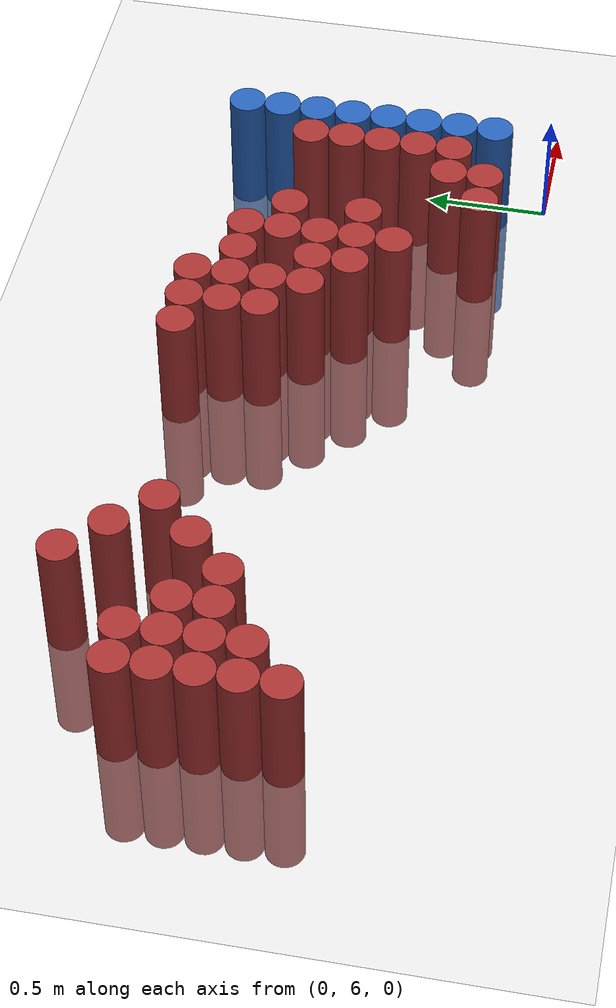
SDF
<sdf version="1.6">
 <world name="default">
  <model name="ground_plane">
   <static>1</static>
   <link name="link">
    <collision name="collision">
     <geometry><plane><normal>0 0 1</normal><size>100 100</size></plane></geometry>
     <surface><friction><ode><mu>100</mu><mu2>50</mu2></ode></friction></surface>
    </collision>
    <visual name="visual">
     <cast_shadows>0</cast_shadows>
     <geometry><plane><normal>0 0 1</normal><size>100 100</size></plane></geometry>
     <material>
      <script><uri>file://media/materials/scripts/gazebo.material</uri><name>Gazebo/Grey</name></script>
     </material>
    </visual>
   </link>
  </model>
  <model name="unit_cylinder_179">
   <static>1</static>
   <pose>-3.075000 6.525000 0.000000 0.000000 0.000000 0.000000</pose>
   <link name="link">
    <inertial>
     <mass>1</mass>
     <inertia><ixx>0.145833</ixx><ixy>0</ixy><ixz>0</ixz><iyy>0.145833</iyy><iyz>0</iyz><izz>0.125</izz></inertia>
    </inertial>
    <collision name="collision">
     <geometry><cylinder><radius>0.075000</radius><length>1</length></cylinder></geometry>
    </collision>
    <visual name="visual">
     <geometry><cylinder><radius>0.075000</radius><length>1</length></cylinder></geometry>
     <material>
      <ambient>0.648000 0.192000 0.192000 1</ambient>
      <diffuse>0.648000 0.192000 0.192000 1</diffuse>
     </material>
     <material>
      <script><name>Gazebo/Grey</name><uri>file://media/materials/scripts/gazebo.material</uri></script>
     </material>
    </visual>
   </link>
  </model>
  <model name="unit_cylinder_180">
   <static>1</static>
   <pose>-3.075000 6.675000 0.000000 0.000000 0.000000 0.000000</pose>
   <link name="link">
    <inertial>
     <mass>1</mass>
     <inertia><ixx>0.145833</ixx><ixy>0</ixy><ixz>0</ixz><iyy>0.145833</iyy><iyz>0</iyz><izz>0.125</izz></inertia>
    </inertial>
    <collision name="collision">
     <geometry><cylinder><radius>0.075000</radius><length>1</length></cylinder></geometry>
    </collision>
    <visual name="visual">
     <geometry><cylinder><radius>0.075000</radius><length>1</length></cylinder></geometry>
     <material>
      <ambient>0.648000 0.192000 0.192000 1</ambient>
      <diffuse>0.648000 0.192000 0.192000 1</diffuse>
     </material>
     <material>
      <script><name>Gazebo/Grey</name><uri>file://media/materials/scripts/gazebo.material</uri></script>
     </material>
    </visual>
   </link>
  </model>
  <model name="unit_cylinder_181">
   <static>1</static>
   <pose>-3.075000 6.825000 0.000000 0.000000 0.000000 0.000000</pose>
   <link name="link">
    <inertial>
     <mass>1</mass>
     <inertia><ixx>0.145833</ixx><ixy>0</ixy><ixz>0</ixz><iyy>0.145833</iyy><iyz>0</iyz><izz>0.125</izz></inertia>
    </inertial>
    <collision name="collision">
     <geometry><cylinder><radius>0.075000</radius><length>1</length></cylinder></geometry>
    </collision>
    <visual name="visual">
     <geometry><cylinder><radius>0.075000</radius><length>1</length></cylinder></geometry>
     <material>
      <ambient>0.648000 0.192000 0.192000 1</ambient>
      <diffuse>0.648000 0.192000 0.192000 1</diffuse>
     </material>
     <material>
      <script><name>Gazebo/Grey</name><uri>file://media/materials/scripts/gazebo.material</uri></script>
     </material>
    </visual>
   </link>
  </model>
  <model name="unit_cylinder_182">
   <static>1</static>
   <pose>-3.075000 6.975000 0.000000 0.000000 0.000000 0.000000</pose>
   <link name="link">
    <inertial>
     <mass>1</mass>
     <inertia><ixx>0.145833</ixx><ixy>0</ixy><ixz>0</ixz><iyy>0.145833</iyy><iyz>0</iyz><izz>0.125</izz></inertia>
    </inertial>
    <collision name="collision">
     <geometry><cylinder><radius>0.075000</radius><length>1</length></cylinder></geometry>
    </collision>
    <visual name="visual">
     <geometry><cylinder><radius>0.075000</radius><length>1</length></cylinder></geometry>
     <material>
      <ambient>0.648000 0.192000 0.192000 1</ambient>
      <diffuse>0.648000 0.192000 0.192000 1</diffuse>
     </material>
     <material>
      <script><name>Gazebo/Grey</name><uri>file://media/materials/scripts/gazebo.material</uri></script>
     </material>
    </visual>
   </link>
  </model>
  <model name="unit_cylinder_183">
   <static>1</static>
   <pose>-3.075000 7.125000 0.000000 0.000000 0.000000 0.000000</pose>
   <link name="link">
    <inertial>
     <mass>1</mass>
     <inertia><ixx>0.145833</ixx><ixy>0</ixy><ixz>0</ixz><iyy>0.145833</iyy><iyz>0</iyz><izz>0.125</izz></inertia>
    </inertial>
    <collision name="collision">
     <geometry><cylinder><radius>0.075000</radius><length>1</length></cylinder></geometry>
    </collision>
    <visual name="visual">
     <geometry><cylinder><radius>0.075000</radius><length>1</length></cylinder></geometry>
     <material>
      <ambient>0.648000 0.192000 0.192000 1</ambient>
      <diffuse>0.648000 0.192000 0.192000 1</diffuse>
     </material>
     <material>
      <script><name>Gazebo/Grey</name><uri>file://media/materials/scripts/gazebo.material</uri></script>
     </material>
    </visual>
   </link>
  </model>
  <model name="unit_cylinder_190">
   <static>1</static>
   <pose>-2.925000 6.675000 0.000000 0.000000 0.000000 0.000000</pose>
   <link name="link">
    <inertial>
     <mass>1</mass>
     <inertia><ixx>0.145833</ixx><ixy>0</ixy><ixz>0</ixz><iyy>0.145833</iyy><iyz>0</iyz><izz>0.125</izz></inertia>
    </inertial>
    <collision name="collision">
     <geometry><cylinder><radius>0.075000</radius><length>1</length></cylinder></geometry>
    </collision>
    <visual name="visual">
     <geometry><cylinder><radius>0.075000</radius><length>1</length></cylinder></geometry>
     <material>
      <ambient>0.648000 0.192000 0.192000 1</ambient>
      <diffuse>0.648000 0.192000 0.192000 1</diffuse>
     </material>
     <material>
      <script><name>Gazebo/Grey</name><uri>file://media/materials/scripts/gazebo.material</uri></script>
     </material>
    </visual>
   </link>
  </model>
  <model name="unit_cylinder_191">
   <static>1</static>
   <pose>-2.925000 6.825000 0.000000 0.000000 0.000000 0.000000</pose>
   <link name="link">
    <inertial>
     <mass>1</mass>
     <inertia><ixx>0.145833</ixx><ixy>0</ixy><ixz>0</ixz><iyy>0.145833</iyy><iyz>0</iyz><izz>0.125</izz></inertia>
    </inertial>
    <collision name="collision">
     <geometry><cylinder><radius>0.075000</radius><length>1</length></cylinder></geometry>
    </collision>
    <visual name="visual">
     <geometry><cylinder><radius>0.075000</radius><length>1</length></cylinder></geometry>
     <material>
      <ambient>0.648000 0.192000 0.192000 1</ambient>
      <diffuse>0.648000 0.192000 0.192000 1</diffuse>
     </material>
     <material>
      <script><name>Gazebo/Grey</name><uri>file://media/materials/scripts/gazebo.material</uri></script>
     </material>
    </visual>
   </link>
  </model>
  <model name="unit_cylinder_192">
   <static>1</static>
   <pose>-2.925000 6.975000 0.000000 0.000000 0.000000 0.000000</pose>
   <link name="link">
    <inertial>
     <mass>1</mass>
     <inertia><ixx>0.145833</ixx><ixy>0</ixy><ixz>0</ixz><iyy>0.145833</iyy><iyz>0</iyz><izz>0.125</izz></inertia>
    </inertial>
    <collision name="collision">
     <geometry><cylinder><radius>0.075000</radius><length>1</length></cylinder></geometry>
    </collision>
    <visual name="visual">
     <geometry><cylinder><radius>0.075000</radius><length>1</length></cylinder></geometry>
     <material>
      <ambient>0.648000 0.192000 0.192000 1</ambient>
      <diffuse>0.648000 0.192000 0.192000 1</diffuse>
     </material>
     <material>
      <script><name>Gazebo/Grey</name><uri>file://media/materials/scripts/gazebo.material</uri></script>
     </material>
    </visual>
   </link>
  </model>
  <model name="unit_cylinder_193">
   <static>1</static>
   <pose>-2.925000 7.125000 0.000000 0.000000 0.000000 0.000000</pose>
   <link name="link">
    <inertial>
     <mass>1</mass>
     <inertia><ixx>0.145833</ixx><ixy>0</ixy><ixz>0</ixz><iyy>0.145833</iyy><iyz>0</iyz><izz>0.125</izz></inertia>
    </inertial>
    <collision name="collision">
     <geometry><cylinder><radius>0.075000</radius><length>1</length></cylinder></geometry>
    </collision>
    <visual name="visual">
     <geometry><cylinder><radius>0.075000</radius><length>1</length></cylinder></geometry>
     <material>
      <ambient>0.648000 0.192000 0.192000 1</ambient>
      <diffuse>0.648000 0.192000 0.192000 1</diffuse>
     </material>
     <material>
      <script><name>Gazebo/Grey</name><uri>file://media/materials/scripts/gazebo.material</uri></script>
     </material>
    </visual>
   </link>
  </model>
  <model name="unit_cylinder_197">
   <static>1</static>
   <pose>-2.775000 6.825000 0.000000 0.000000 0.000000 0.000000</pose>
   <link name="link">
    <inertial>
     <mass>1</mass>
     <inertia><ixx>0.145833</ixx><ixy>0</ixy><ixz>0</ixz><iyy>0.145833</iyy><iyz>0</iyz><izz>0.125</izz></inertia>
    </inertial>
    <collision name="collision">
     <geometry><cylinder><radius>0.075000</radius><length>1</length></cylinder></geometry>
    </collision>
    <visual name="visual">
     <geometry><cylinder><radius>0.075000</radius><length>1</length></cylinder></geometry>
     <material>
      <ambient>0.648000 0.192000 0.192000 1</ambient>
      <diffuse>0.648000 0.192000 0.192000 1</diffuse>
     </material>
     <material>
      <script><name>Gazebo/Grey</name><uri>file://media/materials/scripts/gazebo.material</uri></script>
     </material>
    </visual>
   </link>
  </model>
  <model name="unit_cylinder_198">
   <static>1</static>
   <pose>-2.775000 6.975000 0.000000 0.000000 0.000000 0.000000</pose>
   <link name="link">
    <inertial>
     <mass>1</mass>
     <inertia><ixx>0.145833</ixx><ixy>0</ixy><ixz>0</ixz><iyy>0.145833</iyy><iyz>0</iyz><izz>0.125</izz></inertia>
    </inertial>
    <collision name="collision">
     <geometry><cylinder><radius>0.075000</radius><length>1</length></cylinder></geometry>
    </collision>
    <visual name="visual">
     <geometry><cylinder><radius>0.075000</radius><length>1</length></cylinder></geometry>
     <material>
      <ambient>0.648000 0.192000 0.192000 1</ambient>
      <diffuse>0.648000 0.192000 0.192000 1</diffuse>
     </material>
     <material>
      <script><name>Gazebo/Grey</name><uri>file://media/materials/scripts/gazebo.material</uri></script>
     </material>
    </visual>
   </link>
  </model>
  <model name="unit_cylinder_203">
   <static>1</static>
   <pose>-2.625000 6.825000 0.000000 0.000000 0.000000 0.000000</pose>
   <link name="link">
    <inertial>
     <mass>1</mass>
     <inertia><ixx>0.145833</ixx><ixy>0</ixy><ixz>0</ixz><iyy>0.145833</iyy><iyz>0</iyz><izz>0.125</izz></inertia>
    </inertial>
    <collision name="collision">
     <geometry><cylinder><radius>0.075000</radius><length>1</length></cylinder></geometry>
    </collision>
    <visual name="visual">
     <geometry><cylinder><radius>0.075000</radius><length>1</length></cylinder></geometry>
     <material>
      <ambient>0.648000 0.192000 0.192000 1</ambient>
      <diffuse>0.648000 0.192000 0.192000 1</diffuse>
     </material>
     <material>
      <script><name>Gazebo/Grey</name><uri>file://media/materials/scripts/gazebo.material</uri></script>
     </material>
    </visual>
   </link>
  </model>
  <model name="unit_cylinder_204">
   <static>1</static>
   <pose>-2.625000 7.425000 0.000000 0.000000 0.000000 0.000000</pose>
   <link name="link">
    <inertial>
     <mass>1</mass>
     <inertia><ixx>0.145833</ixx><ixy>0</ixy><ixz>0</ixz><iyy>0.145833</iyy><iyz>0</iyz><izz>0.125</izz></inertia>
    </inertial>
    <collision name="collision">
     <geometry><cylinder><radius>0.075000</radius><length>1</length></cylinder></geometry>
    </collision>
    <visual name="visual">
     <geometry><cylinder><radius>0.075000</radius><length>1</length></cylinder></geometry>
     <material>
      <ambient>0.648000 0.192000 0.192000 1</ambient>
      <diffuse>0.648000 0.192000 0.192000 1</diffuse>
     </material>
     <material>
      <script><name>Gazebo/Grey</name><uri>file://media/materials/scripts/gazebo.material</uri></script>
     </material>
    </visual>
   </link>
  </model>
  <model name="unit_cylinder_211">
   <static>1</static>
   <pose>-2.475000 6.975000 0.000000 0.000000 0.000000 0.000000</pose>
   <link name="link">
    <inertial>
     <mass>1</mass>
     <inertia><ixx>0.145833</ixx><ixy>0</ixy><ixz>0</ixz><iyy>0.145833</iyy><iyz>0</iyz><izz>0.125</izz></inertia>
    </inertial>
    <collision name="collision">
     <geometry><cylinder><radius>0.075000</radius><length>1</length></cylinder></geometry>
    </collision>
    <visual name="visual">
     <geometry><cylinder><radius>0.075000</radius><length>1</length></cylinder></geometry>
     <material>
      <ambient>0.648000 0.192000 0.192000 1</ambient>
      <diffuse>0.648000 0.192000 0.192000 1</diffuse>
     </material>
     <material>
      <script><name>Gazebo/Grey</name><uri>file://media/materials/scripts/gazebo.material</uri></script>
     </material>
    </visual>
   </link>
  </model>
  <model name="unit_cylinder_212">
   <static>1</static>
   <pose>-2.475000 7.275000 0.000000 0.000000 0.000000 0.000000</pose>
   <link name="link">
    <inertial>
     <mass>1</mass>
     <inertia><ixx>0.145833</ixx><ixy>0</ixy><ixz>0</ixz><iyy>0.145833</iyy><iyz>0</iyz><izz>0.125</izz></inertia>
    </inertial>
    <collision name="collision">
     <geometry><cylinder><radius>0.075000</radius><length>1</length></cylinder></geometry>
    </collision>
    <visual name="visual">
     <geometry><cylinder><radius>0.075000</radius><length>1</length></cylinder></geometry>
     <material>
      <ambient>0.648000 0.192000 0.192000 1</ambient>
      <diffuse>0.648000 0.192000 0.192000 1</diffuse>
     </material>
     <material>
      <script><name>Gazebo/Grey</name><uri>file://media/materials/scripts/gazebo.material</uri></script>
     </material>
    </visual>
   </link>
  </model>
  <model name="unit_cylinder_218">
   <static>1</static>
   <pose>-2.325000 7.125000 0.000000 0.000000 0.000000 0.000000</pose>
   <link name="link">
    <inertial>
     <mass>1</mass>
     <inertia><ixx>0.145833</ixx><ixy>0</ixy><ixz>0</ixz><iyy>0.145833</iyy><iyz>0</iyz><izz>0.125</izz></inertia>
    </inertial>
    <collision name="collision">
     <geometry><cylinder><radius>0.075000</radius><length>1</length></cylinder></geometry>
    </collision>
    <visual name="visual">
     <geometry><cylinder><radius>0.075000</radius><length>1</length></cylinder></geometry>
     <material>
      <ambient>0.648000 0.192000 0.192000 1</ambient>
      <diffuse>0.648000 0.192000 0.192000 1</diffuse>
     </material>
     <material>
      <script><name>Gazebo/Grey</name><uri>file://media/materials/scripts/gazebo.material</uri></script>
     </material>
    </visual>
   </link>
  </model>
  <model name="unit_cylinder_220">
   <static>1</static>
   <pose>-1.425000 7.275000 0.000000 0.000000 0.000000 0.000000</pose>
   <link name="link">
    <inertial>
     <mass>1</mass>
     <inertia><ixx>0.145833</ixx><ixy>0</ixy><ixz>0</ixz><iyy>0.145833</iyy><iyz>0</iyz><izz>0.125</izz></inertia>
    </inertial>
    <collision name="collision">
     <geometry><cylinder><radius>0.075000</radius><length>1</length></cylinder></geometry>
    </collision>
    <visual name="visual">
     <geometry><cylinder><radius>0.075000</radius><length>1</length></cylinder></geometry>
     <material>
      <ambient>0.648000 0.192000 0.192000 1</ambient>
      <diffuse>0.648000 0.192000 0.192000 1</diffuse>
     </material>
     <material>
      <script><name>Gazebo/Grey</name><uri>file://media/materials/scripts/gazebo.material</uri></script>
     </material>
    </visual>
   </link>
  </model>
  <model name="unit_cylinder_222">
   <static>1</static>
   <pose>-1.275000 6.975000 0.000000 0.000000 0.000000 0.000000</pose>
   <link name="link">
    <inertial>
     <mass>1</mass>
     <inertia><ixx>0.145833</ixx><ixy>0</ixy><ixz>0</ixz><iyy>0.145833</iyy><iyz>0</iyz><izz>0.125</izz></inertia>
    </inertial>
    <collision name="collision">
     <geometry><cylinder><radius>0.075000</radius><length>1</length></cylinder></geometry>
    </collision>
    <visual name="visual">
     <geometry><cylinder><radius>0.075000</radius><length>1</length></cylinder></geometry>
     <material>
      <ambient>0.648000 0.192000 0.192000 1</ambient>
      <diffuse>0.648000 0.192000 0.192000 1</diffuse>
     </material>
     <material>
      <script><name>Gazebo/Grey</name><uri>file://media/materials/scripts/gazebo.material</uri></script>
     </material>
    </visual>
   </link>
  </model>
  <model name="unit_cylinder_223">
   <static>1</static>
   <pose>-1.275000 7.125000 0.000000 0.000000 0.000000 0.000000</pose>
   <link name="link">
    <inertial>
     <mass>1</mass>
     <inertia><ixx>0.145833</ixx><ixy>0</ixy><ixz>0</ixz><iyy>0.145833</iyy><iyz>0</iyz><izz>0.125</izz></inertia>
    </inertial>
    <collision name="collision">
     <geometry><cylinder><radius>0.075000</radius><length>1</length></cylinder></geometry>
    </collision>
    <visual name="visual">
     <geometry><cylinder><radius>0.075000</radius><length>1</length></cylinder></geometry>
     <material>
      <ambient>0.648000 0.192000 0.192000 1</ambient>
      <diffuse>0.648000 0.192000 0.192000 1</diffuse>
     </material>
     <material>
      <script><name>Gazebo/Grey</name><uri>file://media/materials/scripts/gazebo.material</uri></script>
     </material>
    </visual>
   </link>
  </model>
  <model name="unit_cylinder_224">
   <static>1</static>
   <pose>-1.275000 7.275000 0.000000 0.000000 0.000000 0.000000</pose>
   <link name="link">
    <inertial>
     <mass>1</mass>
     <inertia><ixx>0.145833</ixx><ixy>0</ixy><ixz>0</ixz><iyy>0.145833</iyy><iyz>0</iyz><izz>0.125</izz></inertia>
    </inertial>
    <collision name="collision">
     <geometry><cylinder><radius>0.075000</radius><length>1</length></cylinder></geometry>
    </collision>
    <visual name="visual">
     <geometry><cylinder><radius>0.075000</radius><length>1</length></cylinder></geometry>
     <material>
      <ambient>0.648000 0.192000 0.192000 1</ambient>
      <diffuse>0.648000 0.192000 0.192000 1</diffuse>
     </material>
     <material>
      <script><name>Gazebo/Grey</name><uri>file://media/materials/scripts/gazebo.material</uri></script>
     </material>
    </visual>
   </link>
  </model>
  <model name="unit_cylinder_227">
   <static>1</static>
   <pose>-1.125000 6.825000 0.000000 0.000000 0.000000 0.000000</pose>
   <link name="link">
    <inertial>
     <mass>1</mass>
     <inertia><ixx>0.145833</ixx><ixy>0</ixy><ixz>0</ixz><iyy>0.145833</iyy><iyz>0</iyz><izz>0.125</izz></inertia>
    </inertial>
    <collision name="collision">
     <geometry><cylinder><radius>0.075000</radius><length>1</length></cylinder></geometry>
    </collision>
    <visual name="visual">
     <geometry><cylinder><radius>0.075000</radius><length>1</length></cylinder></geometry>
     <material>
      <ambient>0.648000 0.192000 0.192000 1</ambient>
      <diffuse>0.648000 0.192000 0.192000 1</diffuse>
     </material>
     <material>
      <script><name>Gazebo/Grey</name><uri>file://media/materials/scripts/gazebo.material</uri></script>
     </material>
    </visual>
   </link>
  </model>
  <model name="unit_cylinder_228">
   <static>1</static>
   <pose>-1.125000 6.975000 0.000000 0.000000 0.000000 0.000000</pose>
   <link name="link">
    <inertial>
     <mass>1</mass>
     <inertia><ixx>0.145833</ixx><ixy>0</ixy><ixz>0</ixz><iyy>0.145833</iyy><iyz>0</iyz><izz>0.125</izz></inertia>
    </inertial>
    <collision name="collision">
     <geometry><cylinder><radius>0.075000</radius><length>1</length></cylinder></geometry>
    </collision>
    <visual name="visual">
     <geometry><cylinder><radius>0.075000</radius><length>1</length></cylinder></geometry>
     <material>
      <ambient>0.648000 0.192000 0.192000 1</ambient>
      <diffuse>0.648000 0.192000 0.192000 1</diffuse>
     </material>
     <material>
      <script><name>Gazebo/Grey</name><uri>file://media/materials/scripts/gazebo.material</uri></script>
     </material>
    </visual>
   </link>
  </model>
  <model name="unit_cylinder_229">
   <static>1</static>
   <pose>-1.125000 7.125000 0.000000 0.000000 0.000000 0.000000</pose>
   <link name="link">
    <inertial>
     <mass>1</mass>
     <inertia><ixx>0.145833</ixx><ixy>0</ixy><ixz>0</ixz><iyy>0.145833</iyy><iyz>0</iyz><izz>0.125</izz></inertia>
    </inertial>
    <collision name="collision">
     <geometry><cylinder><radius>0.075000</radius><length>1</length></cylinder></geometry>
    </collision>
    <visual name="visual">
     <geometry><cylinder><radius>0.075000</radius><length>1</length></cylinder></geometry>
     <material>
      <ambient>0.648000 0.192000 0.192000 1</ambient>
      <diffuse>0.648000 0.192000 0.192000 1</diffuse>
     </material>
     <material>
      <script><name>Gazebo/Grey</name><uri>file://media/materials/scripts/gazebo.material</uri></script>
     </material>
    </visual>
   </link>
  </model>
  <model name="unit_cylinder_230">
   <static>1</static>
   <pose>-1.125000 7.275000 0.000000 0.000000 0.000000 0.000000</pose>
   <link name="link">
    <inertial>
     <mass>1</mass>
     <inertia><ixx>0.145833</ixx><ixy>0</ixy><ixz>0</ixz><iyy>0.145833</iyy><iyz>0</iyz><izz>0.125</izz></inertia>
    </inertial>
    <collision name="collision">
     <geometry><cylinder><radius>0.075000</radius><length>1</length></cylinder></geometry>
    </collision>
    <visual name="visual">
     <geometry><cylinder><radius>0.075000</radius><length>1</length></cylinder></geometry>
     <material>
      <ambient>0.648000 0.192000 0.192000 1</ambient>
      <diffuse>0.648000 0.192000 0.192000 1</diffuse>
     </material>
     <material>
      <script><name>Gazebo/Grey</name><uri>file://media/materials/scripts/gazebo.material</uri></script>
     </material>
    </visual>
   </link>
  </model>
  <model name="unit_cylinder_233">
   <static>1</static>
   <pose>-0.975000 6.675000 0.000000 0.000000 0.000000 0.000000</pose>
   <link name="link">
    <inertial>
     <mass>1</mass>
     <inertia><ixx>0.145833</ixx><ixy>0</ixy><ixz>0</ixz><iyy>0.145833</iyy><iyz>0</iyz><izz>0.125</izz></inertia>
    </inertial>
    <collision name="collision">
     <geometry><cylinder><radius>0.075000</radius><length>1</length></cylinder></geometry>
    </collision>
    <visual name="visual">
     <geometry><cylinder><radius>0.075000</radius><length>1</length></cylinder></geometry>
     <material>
      <ambient>0.648000 0.192000 0.192000 1</ambient>
      <diffuse>0.648000 0.192000 0.192000 1</diffuse>
     </material>
     <material>
      <script><name>Gazebo/Grey</name><uri>file://media/materials/scripts/gazebo.material</uri></script>
     </material>
    </visual>
   </link>
  </model>
  <model name="unit_cylinder_234">
   <static>1</static>
   <pose>-0.975000 6.825000 0.000000 0.000000 0.000000 0.000000</pose>
   <link name="link">
    <inertial>
     <mass>1</mass>
     <inertia><ixx>0.145833</ixx><ixy>0</ixy><ixz>0</ixz><iyy>0.145833</iyy><iyz>0</iyz><izz>0.125</izz></inertia>
    </inertial>
    <collision name="collision">
     <geometry><cylinder><radius>0.075000</radius><length>1</length></cylinder></geometry>
    </collision>
    <visual name="visual">
     <geometry><cylinder><radius>0.075000</radius><length>1</length></cylinder></geometry>
     <material>
      <ambient>0.648000 0.192000 0.192000 1</ambient>
      <diffuse>0.648000 0.192000 0.192000 1</diffuse>
     </material>
     <material>
      <script><name>Gazebo/Grey</name><uri>file://media/materials/scripts/gazebo.material</uri></script>
     </material>
    </visual>
   </link>
  </model>
  <model name="unit_cylinder_235">
   <static>1</static>
   <pose>-0.975000 7.125000 0.000000 0.000000 0.000000 0.000000</pose>
   <link name="link">
    <inertial>
     <mass>1</mass>
     <inertia><ixx>0.145833</ixx><ixy>0</ixy><ixz>0</ixz><iyy>0.145833</iyy><iyz>0</iyz><izz>0.125</izz></inertia>
    </inertial>
    <collision name="collision">
     <geometry><cylinder><radius>0.075000</radius><length>1</length></cylinder></geometry>
    </collision>
    <visual name="visual">
     <geometry><cylinder><radius>0.075000</radius><length>1</length></cylinder></geometry>
     <material>
      <ambient>0.648000 0.192000 0.192000 1</ambient>
      <diffuse>0.648000 0.192000 0.192000 1</diffuse>
     </material>
     <material>
      <script><name>Gazebo/Grey</name><uri>file://media/materials/scripts/gazebo.material</uri></script>
     </material>
    </visual>
   </link>
  </model>
  <model name="unit_cylinder_238">
   <static>1</static>
   <pose>-0.825000 6.525000 0.000000 0.000000 0.000000 0.000000</pose>
   <link name="link">
    <inertial>
     <mass>1</mass>
     <inertia><ixx>0.145833</ixx><ixy>0</ixy><ixz>0</ixz><iyy>0.145833</iyy><iyz>0</iyz><izz>0.125</izz></inertia>
    </inertial>
    <collision name="collision">
     <geometry><cylinder><radius>0.075000</radius><length>1</length></cylinder></geometry>
    </collision>
    <visual name="visual">
     <geometry><cylinder><radius>0.075000</radius><length>1</length></cylinder></geometry>
     <material>
      <ambient>0.648000 0.192000 0.192000 1</ambient>
      <diffuse>0.648000 0.192000 0.192000 1</diffuse>
     </material>
     <material>
      <script><name>Gazebo/Grey</name><uri>file://media/materials/scripts/gazebo.material</uri></script>
     </material>
    </visual>
   </link>
  </model>
  <model name="unit_cylinder_239">
   <static>1</static>
   <pose>-0.825000 6.675000 0.000000 0.000000 0.000000 0.000000</pose>
   <link name="link">
    <inertial>
     <mass>1</mass>
     <inertia><ixx>0.145833</ixx><ixy>0</ixy><ixz>0</ixz><iyy>0.145833</iyy><iyz>0</iyz><izz>0.125</izz></inertia>
    </inertial>
    <collision name="collision">
     <geometry><cylinder><radius>0.075000</radius><length>1</length></cylinder></geometry>
    </collision>
    <visual name="visual">
     <geometry><cylinder><radius>0.075000</radius><length>1</length></cylinder></geometry>
     <material>
      <ambient>0.648000 0.192000 0.192000 1</ambient>
      <diffuse>0.648000 0.192000 0.192000 1</diffuse>
     </material>
     <material>
      <script><name>Gazebo/Grey</name><uri>file://media/materials/scripts/gazebo.material</uri></script>
     </material>
    </visual>
   </link>
  </model>
  <model name="unit_cylinder_240">
   <static>1</static>
   <pose>-0.825000 6.825000 0.000000 0.000000 0.000000 0.000000</pose>
   <link name="link">
    <inertial>
     <mass>1</mass>
     <inertia><ixx>0.145833</ixx><ixy>0</ixy><ixz>0</ixz><iyy>0.145833</iyy><iyz>0</iyz><izz>0.125</izz></inertia>
    </inertial>
    <collision name="collision">
     <geometry><cylinder><radius>0.075000</radius><length>1</length></cylinder></geometry>
    </collision>
    <visual name="visual">
     <geometry><cylinder><radius>0.075000</radius><length>1</length></cylinder></geometry>
     <material>
      <ambient>0.648000 0.192000 0.192000 1</ambient>
      <diffuse>0.648000 0.192000 0.192000 1</diffuse>
     </material>
     <material>
      <script><name>Gazebo/Grey</name><uri>file://media/materials/scripts/gazebo.material</uri></script>
     </material>
    </visual>
   </link>
  </model>
  <model name="unit_cylinder_241">
   <static>1</static>
   <pose>-0.825000 6.975000 0.000000 0.000000 0.000000 0.000000</pose>
   <link name="link">
    <inertial>
     <mass>1</mass>
     <inertia><ixx>0.145833</ixx><ixy>0</ixy><ixz>0</ixz><iyy>0.145833</iyy><iyz>0</iyz><izz>0.125</izz></inertia>
    </inertial>
    <collision name="collision">
     <geometry><cylinder><radius>0.075000</radius><length>1</length></cylinder></geometry>
    </collision>
    <visual name="visual">
     <geometry><cylinder><radius>0.075000</radius><length>1</length></cylinder></geometry>
     <material>
      <ambient>0.648000 0.192000 0.192000 1</ambient>
      <diffuse>0.648000 0.192000 0.192000 1</diffuse>
     </material>
     <material>
      <script><name>Gazebo/Grey</name><uri>file://media/materials/scripts/gazebo.material</uri></script>
     </material>
    </visual>
   </link>
  </model>
  <model name="unit_cylinder_242">
   <static>1</static>
   <pose>-0.825000 7.125000 0.000000 0.000000 0.000000 0.000000</pose>
   <link name="link">
    <inertial>
     <mass>1</mass>
     <inertia><ixx>0.145833</ixx><ixy>0</ixy><ixz>0</ixz><iyy>0.145833</iyy><iyz>0</iyz><izz>0.125</izz></inertia>
    </inertial>
    <collision name="collision">
     <geometry><cylinder><radius>0.075000</radius><length>1</length></cylinder></geometry>
    </collision>
    <visual name="visual">
     <geometry><cylinder><radius>0.075000</radius><length>1</length></cylinder></geometry>
     <material>
      <ambient>0.648000 0.192000 0.192000 1</ambient>
      <diffuse>0.648000 0.192000 0.192000 1</diffuse>
     </material>
     <material>
      <script><name>Gazebo/Grey</name><uri>file://media/materials/scripts/gazebo.material</uri></script>
     </material>
    </visual>
   </link>
  </model>
  <model name="unit_cylinder_247">
   <static>1</static>
   <pose>-0.675000 6.675000 0.000000 0.000000 0.000000 0.000000</pose>
   <link name="link">
    <inertial>
     <mass>1</mass>
     <inertia><ixx>0.145833</ixx><ixy>0</ixy><ixz>0</ixz><iyy>0.145833</iyy><iyz>0</iyz><izz>0.125</izz></inertia>
    </inertial>
    <collision name="collision">
     <geometry><cylinder><radius>0.075000</radius><length>1</length></cylinder></geometry>
    </collision>
    <visual name="visual">
     <geometry><cylinder><radius>0.075000</radius><length>1</length></cylinder></geometry>
     <material>
      <ambient>0.648000 0.192000 0.192000 1</ambient>
      <diffuse>0.648000 0.192000 0.192000 1</diffuse>
     </material>
     <material>
      <script><name>Gazebo/Grey</name><uri>file://media/materials/scripts/gazebo.material</uri></script>
     </material>
    </visual>
   </link>
  </model>
  <model name="unit_cylinder_248">
   <static>1</static>
   <pose>-0.675000 6.975000 0.000000 0.000000 0.000000 0.000000</pose>
   <link name="link">
    <inertial>
     <mass>1</mass>
     <inertia><ixx>0.145833</ixx><ixy>0</ixy><ixz>0</ixz><iyy>0.145833</iyy><iyz>0</iyz><izz>0.125</izz></inertia>
    </inertial>
    <collision name="collision">
     <geometry><cylinder><radius>0.075000</radius><length>1</length></cylinder></geometry>
    </collision>
    <visual name="visual">
     <geometry><cylinder><radius>0.075000</radius><length>1</length></cylinder></geometry>
     <material>
      <ambient>0.648000 0.192000 0.192000 1</ambient>
      <diffuse>0.648000 0.192000 0.192000 1</diffuse>
     </material>
     <material>
      <script><name>Gazebo/Grey</name><uri>file://media/materials/scripts/gazebo.material</uri></script>
     </material>
    </visual>
   </link>
  </model>
  <model name="unit_cylinder_251">
   <static>1</static>
   <pose>-0.525000 6.225000 0.000000 0.000000 0.000000 0.000000</pose>
   <link name="link">
    <inertial>
     <mass>1</mass>
     <inertia><ixx>0.145833</ixx><ixy>0</ixy><ixz>0</ixz><iyy>0.145833</iyy><iyz>0</iyz><izz>0.125</izz></inertia>
    </inertial>
    <collision name="collision">
     <geometry><cylinder><radius>0.075000</radius><length>1</length></cylinder></geometry>
    </collision>
    <visual name="visual">
     <geometry><cylinder><radius>0.075000</radius><length>1</length></cylinder></geometry>
     <material>
      <ambient>0.648000 0.192000 0.192000 1</ambient>
      <diffuse>0.648000 0.192000 0.192000 1</diffuse>
     </material>
     <material>
      <script><name>Gazebo/Grey</name><uri>file://media/materials/scripts/gazebo.material</uri></script>
     </material>
    </visual>
   </link>
  </model>
  <model name="unit_cylinder_254">
   <static>1</static>
   <pose>-0.375000 6.225000 0.000000 0.000000 0.000000 0.000000</pose>
   <link name="link">
    <inertial>
     <mass>1</mass>
     <inertia><ixx>0.145833</ixx><ixy>0</ixy><ixz>0</ixz><iyy>0.145833</iyy><iyz>0</iyz><izz>0.125</izz></inertia>
    </inertial>
    <collision name="collision">
     <geometry><cylinder><radius>0.075000</radius><length>1</length></cylinder></geometry>
    </collision>
    <visual name="visual">
     <geometry><cylinder><radius>0.075000</radius><length>1</length></cylinder></geometry>
     <material>
      <ambient>0.648000 0.192000 0.192000 1</ambient>
      <diffuse>0.648000 0.192000 0.192000 1</diffuse>
     </material>
     <material>
      <script><name>Gazebo/Grey</name><uri>file://media/materials/scripts/gazebo.material</uri></script>
     </material>
    </visual>
   </link>
  </model>
  <model name="unit_cylinder_255">
   <static>1</static>
   <pose>-0.375000 6.375000 0.000000 0.000000 0.000000 0.000000</pose>
   <link name="link">
    <inertial>
     <mass>1</mass>
     <inertia><ixx>0.145833</ixx><ixy>0</ixy><ixz>0</ixz><iyy>0.145833</iyy><iyz>0</iyz><izz>0.125</izz></inertia>
    </inertial>
    <collision name="collision">
     <geometry><cylinder><radius>0.075000</radius><length>1</length></cylinder></geometry>
    </collision>
    <visual name="visual">
     <geometry><cylinder><radius>0.075000</radius><length>1</length></cylinder></geometry>
     <material>
      <ambient>0.648000 0.192000 0.192000 1</ambient>
      <diffuse>0.648000 0.192000 0.192000 1</diffuse>
     </material>
     <material>
      <script><name>Gazebo/Grey</name><uri>file://media/materials/scripts/gazebo.material</uri></script>
     </material>
    </visual>
   </link>
  </model>
  <model name="unit_cylinder_261">
   <static>1</static>
   <pose>-0.225000 6.375000 0.000000 0.000000 0.000000 0.000000</pose>
   <link name="link">
    <inertial>
     <mass>1</mass>
     <inertia><ixx>0.145833</ixx><ixy>0</ixy><ixz>0</ixz><iyy>0.145833</iyy><iyz>0</iyz><izz>0.125</izz></inertia>
    </inertial>
    <collision name="collision">
     <geometry><cylinder><radius>0.075000</radius><length>1</length></cylinder></geometry>
    </collision>
    <visual name="visual">
     <geometry><cylinder><radius>0.075000</radius><length>1</length></cylinder></geometry>
     <material>
      <ambient>0.648000 0.192000 0.192000 1</ambient>
      <diffuse>0.648000 0.192000 0.192000 1</diffuse>
     </material>
     <material>
      <script><name>Gazebo/Grey</name><uri>file://media/materials/scripts/gazebo.material</uri></script>
     </material>
    </visual>
   </link>
  </model>
  <model name="unit_cylinder_262">
   <static>1</static>
   <pose>-0.225000 6.525000 0.000000 0.000000 0.000000 0.000000</pose>
   <link name="link">
    <inertial>
     <mass>1</mass>
     <inertia><ixx>0.145833</ixx><ixy>0</ixy><ixz>0</ixz><iyy>0.145833</iyy><iyz>0</iyz><izz>0.125</izz></inertia>
    </inertial>
    <collision name="collision">
     <geometry><cylinder><radius>0.075000</radius><length>1</length></cylinder></geometry>
    </collision>
    <visual name="visual">
     <geometry><cylinder><radius>0.075000</radius><length>1</length></cylinder></geometry>
     <material>
      <ambient>0.648000 0.192000 0.192000 1</ambient>
      <diffuse>0.648000 0.192000 0.192000 1</diffuse>
     </material>
     <material>
      <script><name>Gazebo/Grey</name><uri>file://media/materials/scripts/gazebo.material</uri></script>
     </material>
    </visual>
   </link>
  </model>
  <model name="unit_cylinder_263">
   <static>1</static>
   <pose>-0.225000 6.675000 0.000000 0.000000 0.000000 0.000000</pose>
   <link name="link">
    <inertial>
     <mass>1</mass>
     <inertia><ixx>0.145833</ixx><ixy>0</ixy><ixz>0</ixz><iyy>0.145833</iyy><iyz>0</iyz><izz>0.125</izz></inertia>
    </inertial>
    <collision name="collision">
     <geometry><cylinder><radius>0.075000</radius><length>1</length></cylinder></geometry>
    </collision>
    <visual name="visual">
     <geometry><cylinder><radius>0.075000</radius><length>1</length></cylinder></geometry>
     <material>
      <ambient>0.648000 0.192000 0.192000 1</ambient>
      <diffuse>0.648000 0.192000 0.192000 1</diffuse>
     </material>
     <material>
      <script><name>Gazebo/Grey</name><uri>file://media/materials/scripts/gazebo.material</uri></script>
     </material>
    </visual>
   </link>
  </model>
  <model name="unit_cylinder_264">
   <static>1</static>
   <pose>-0.225000 6.825000 0.000000 0.000000 0.000000 0.000000</pose>
   <link name="link">
    <inertial>
     <mass>1</mass>
     <inertia><ixx>0.145833</ixx><ixy>0</ixy><ixz>0</ixz><iyy>0.145833</iyy><iyz>0</iyz><izz>0.125</izz></inertia>
    </inertial>
    <collision name="collision">
     <geometry><cylinder><radius>0.075000</radius><length>1</length></cylinder></geometry>
    </collision>
    <visual name="visual">
     <geometry><cylinder><radius>0.075000</radius><length>1</length></cylinder></geometry>
     <material>
      <ambient>0.648000 0.192000 0.192000 1</ambient>
      <diffuse>0.648000 0.192000 0.192000 1</diffuse>
     </material>
     <material>
      <script><name>Gazebo/Grey</name><uri>file://media/materials/scripts/gazebo.material</uri></script>
     </material>
    </visual>
   </link>
  </model>
  <model name="unit_cylinder_265">
   <static>1</static>
   <pose>-0.225000 6.975000 0.000000 0.000000 0.000000 0.000000</pose>
   <link name="link">
    <inertial>
     <mass>1</mass>
     <inertia><ixx>0.145833</ixx><ixy>0</ixy><ixz>0</ixz><iyy>0.145833</iyy><iyz>0</iyz><izz>0.125</izz></inertia>
    </inertial>
    <collision name="collision">
     <geometry><cylinder><radius>0.075000</radius><length>1</length></cylinder></geometry>
    </collision>
    <visual name="visual">
     <geometry><cylinder><radius>0.075000</radius><length>1</length></cylinder></geometry>
     <material>
      <ambient>0.648000 0.192000 0.192000 1</ambient>
      <diffuse>0.648000 0.192000 0.192000 1</diffuse>
     </material>
     <material>
      <script><name>Gazebo/Grey</name><uri>file://media/materials/scripts/gazebo.material</uri></script>
     </material>
    </visual>
   </link>
  </model>
  <model name="unit_cylinder_281">
   <static>1</static>
   <pose>-0.075000 6.225000 0.000000 0.000000 0.000000 0.000000</pose>
   <link name="link">
    <inertial>
     <mass>1</mass>
     <inertia><ixx>0.145833</ixx><ixy>0</ixy><ixz>0</ixz><iyy>0.145833</iyy><iyz>0</iyz><izz>0.125</izz></inertia>
    </inertial>
    <collision name="collision">
     <geometry><cylinder><radius>0.075000</radius><length>1</length></cylinder></geometry>
    </collision>
    <visual name="visual">
     <geometry><cylinder><radius>0.075000</radius><length>1</length></cylinder></geometry>
     <material>
      <ambient>0.152000 0.379000 0.720000 1</ambient>
      <diffuse>0.152000 0.379000 0.720000 1</diffuse>
     </material>
     <material>
      <script><name>Gazebo/Grey</name><uri>file://media/materials/scripts/gazebo.material</uri></script>
     </material>
    </visual>
   </link>
  </model>
  <model name="unit_cylinder_282">
   <static>1</static>
   <pose>-0.075000 6.375000 0.000000 0.000000 0.000000 0.000000</pose>
   <link name="link">
    <inertial>
     <mass>1</mass>
     <inertia><ixx>0.145833</ixx><ixy>0</ixy><ixz>0</ixz><iyy>0.145833</iyy><iyz>0</iyz><izz>0.125</izz></inertia>
    </inertial>
    <collision name="collision">
     <geometry><cylinder><radius>0.075000</radius><length>1</length></cylinder></geometry>
    </collision>
    <visual name="visual">
     <geometry><cylinder><radius>0.075000</radius><length>1</length></cylinder></geometry>
     <material>
      <ambient>0.152000 0.379000 0.720000 1</ambient>
      <diffuse>0.152000 0.379000 0.720000 1</diffuse>
     </material>
     <material>
      <script><name>Gazebo/Grey</name><uri>file://media/materials/scripts/gazebo.material</uri></script>
     </material>
    </visual>
   </link>
  </model>
  <model name="unit_cylinder_283">
   <static>1</static>
   <pose>-0.075000 6.525000 0.000000 0.000000 0.000000 0.000000</pose>
   <link name="link">
    <inertial>
     <mass>1</mass>
     <inertia><ixx>0.145833</ixx><ixy>0</ixy><ixz>0</ixz><iyy>0.145833</iyy><iyz>0</iyz><izz>0.125</izz></inertia>
    </inertial>
    <collision name="collision">
     <geometry><cylinder><radius>0.075000</radius><length>1</length></cylinder></geometry>
    </collision>
    <visual name="visual">
     <geometry><cylinder><radius>0.075000</radius><length>1</length></cylinder></geometry>
     <material>
      <ambient>0.152000 0.379000 0.720000 1</ambient>
      <diffuse>0.152000 0.379000 0.720000 1</diffuse>
     </material>
     <material>
      <script><name>Gazebo/Grey</name><uri>file://media/materials/scripts/gazebo.material</uri></script>
     </material>
    </visual>
   </link>
  </model>
  <model name="unit_cylinder_284">
   <static>1</static>
   <pose>-0.075000 6.675000 0.000000 0.000000 0.000000 0.000000</pose>
   <link name="link">
    <inertial>
     <mass>1</mass>
     <inertia><ixx>0.145833</ixx><ixy>0</ixy><ixz>0</ixz><iyy>0.145833</iyy><iyz>0</iyz><izz>0.125</izz></inertia>
    </inertial>
    <collision name="collision">
     <geometry><cylinder><radius>0.075000</radius><length>1</length></cylinder></geometry>
    </collision>
    <visual name="visual">
     <geometry><cylinder><radius>0.075000</radius><length>1</length></cylinder></geometry>
     <material>
      <ambient>0.152000 0.379000 0.720000 1</ambient>
      <diffuse>0.152000 0.379000 0.720000 1</diffuse>
     </material>
     <material>
      <script><name>Gazebo/Grey</name><uri>file://media/materials/scripts/gazebo.material</uri></script>
     </material>
    </visual>
   </link>
  </model>
  <model name="unit_cylinder_285">
   <static>1</static>
   <pose>-0.075000 6.825000 0.000000 0.000000 0.000000 0.000000</pose>
   <link name="link">
    <inertial>
     <mass>1</mass>
     <inertia><ixx>0.145833</ixx><ixy>0</ixy><ixz>0</ixz><iyy>0.145833</iyy><iyz>0</iyz><izz>0.125</izz></inertia>
    </inertial>
    <collision name="collision">
     <geometry><cylinder><radius>0.075000</radius><length>1</length></cylinder></geometry>
    </collision>
    <visual name="visual">
     <geometry><cylinder><radius>0.075000</radius><length>1</length></cylinder></geometry>
     <material>
      <ambient>0.152000 0.379000 0.720000 1</ambient>
      <diffuse>0.152000 0.379000 0.720000 1</diffuse>
     </material>
     <material>
      <script><name>Gazebo/Grey</name><uri>file://media/materials/scripts/gazebo.material</uri></script>
     </material>
    </visual>
   </link>
  </model>
  <model name="unit_cylinder_286">
   <static>1</static>
   <pose>-0.075000 6.975000 0.000000 0.000000 0.000000 0.000000</pose>
   <link name="link">
    <inertial>
     <mass>1</mass>
     <inertia><ixx>0.145833</ixx><ixy>0</ixy><ixz>0</ixz><iyy>0.145833</iyy><iyz>0</iyz><izz>0.125</izz></inertia>
    </inertial>
    <collision name="collision">
     <geometry><cylinder><radius>0.075000</radius><length>1</length></cylinder></geometry>
    </collision>
    <visual name="visual">
     <geometry><cylinder><radius>0.075000</radius><length>1</length></cylinder></geometry>
     <material>
      <ambient>0.152000 0.379000 0.720000 1</ambient>
      <diffuse>0.152000 0.379000 0.720000 1</diffuse>
     </material>
     <material>
      <script><name>Gazebo/Grey</name><uri>file://media/materials/scripts/gazebo.material</uri></script>
     </material>
    </visual>
   </link>
  </model>
  <model name="unit_cylinder_287">
   <static>1</static>
   <pose>-0.075000 7.125000 0.000000 0.000000 0.000000 0.000000</pose>
   <link name="link">
    <inertial>
     <mass>1</mass>
     <inertia><ixx>0.145833</ixx><ixy>0</ixy><ixz>0</ixz><iyy>0.145833</iyy><iyz>0</iyz><izz>0.125</izz></inertia>
    </inertial>
    <collision name="collision">
     <geometry><cylinder><radius>0.075000</radius><length>1</length></cylinder></geometry>
    </collision>
    <visual name="visual">
     <geometry><cylinder><radius>0.075000</radius><length>1</length></cylinder></geometry>
     <material>
      <ambient>0.152000 0.379000 0.720000 1</ambient>
      <diffuse>0.152000 0.379000 0.720000 1</diffuse>
     </material>
     <material>
      <script><name>Gazebo/Grey</name><uri>file://media/materials/scripts/gazebo.material</uri></script>
     </material>
    </visual>
   </link>
  </model>
  <model name="unit_cylinder_288">
   <static>1</static>
   <pose>-0.075000 7.275000 0.000000 0.000000 0.000000 0.000000</pose>
   <link name="link">
    <inertial>
     <mass>1</mass>
     <inertia><ixx>0.145833</ixx><ixy>0</ixy><ixz>0</ixz><iyy>0.145833</iyy><iyz>0</iyz><izz>0.125</izz></inertia>
    </inertial>
    <collision name="collision">
     <geometry><cylinder><radius>0.075000</radius><length>1</length></cylinder></geometry>
    </collision>
    <visual name="visual">
     <geometry><cylinder><radius>0.075000</radius><length>1</length></cylinder></geometry>
     <material>
      <ambient>0.152000 0.379000 0.720000 1</ambient>
      <diffuse>0.152000 0.379000 0.720000 1</diffuse>
     </material>
     <material>
      <script><name>Gazebo/Grey</name><uri>file://media/materials/scripts/gazebo.material</uri></script>
     </material>
    </visual>
   </link>
  </model>
 </world>
</sdf>
